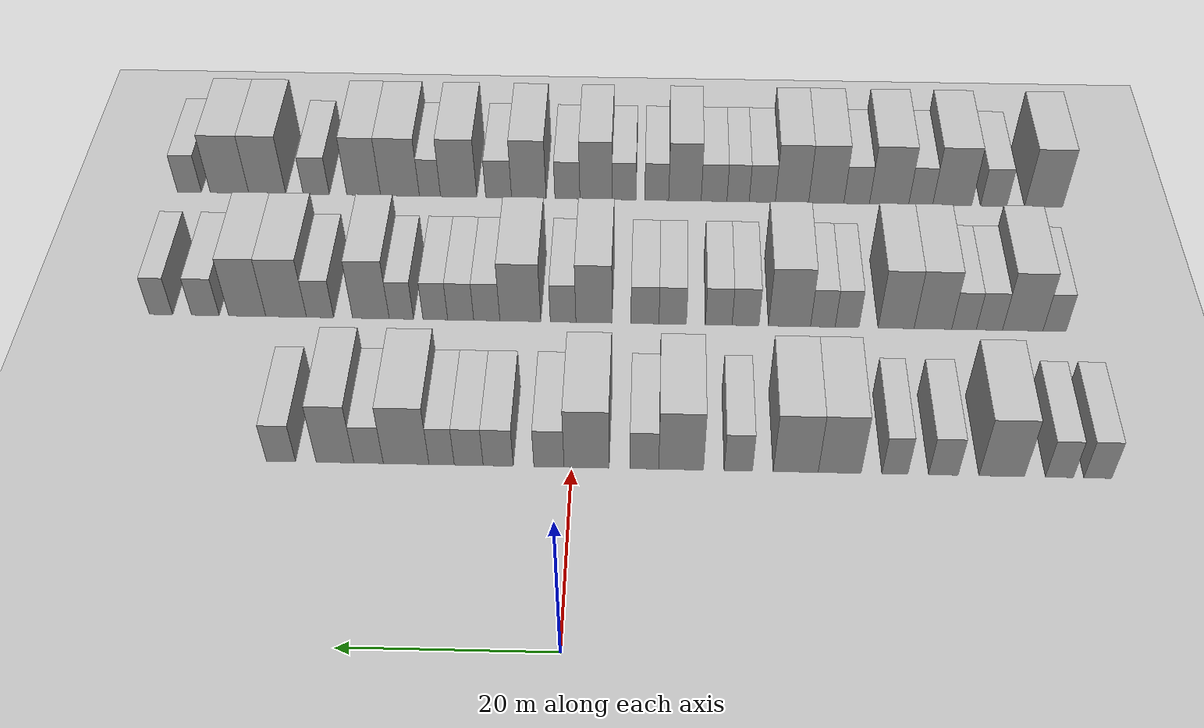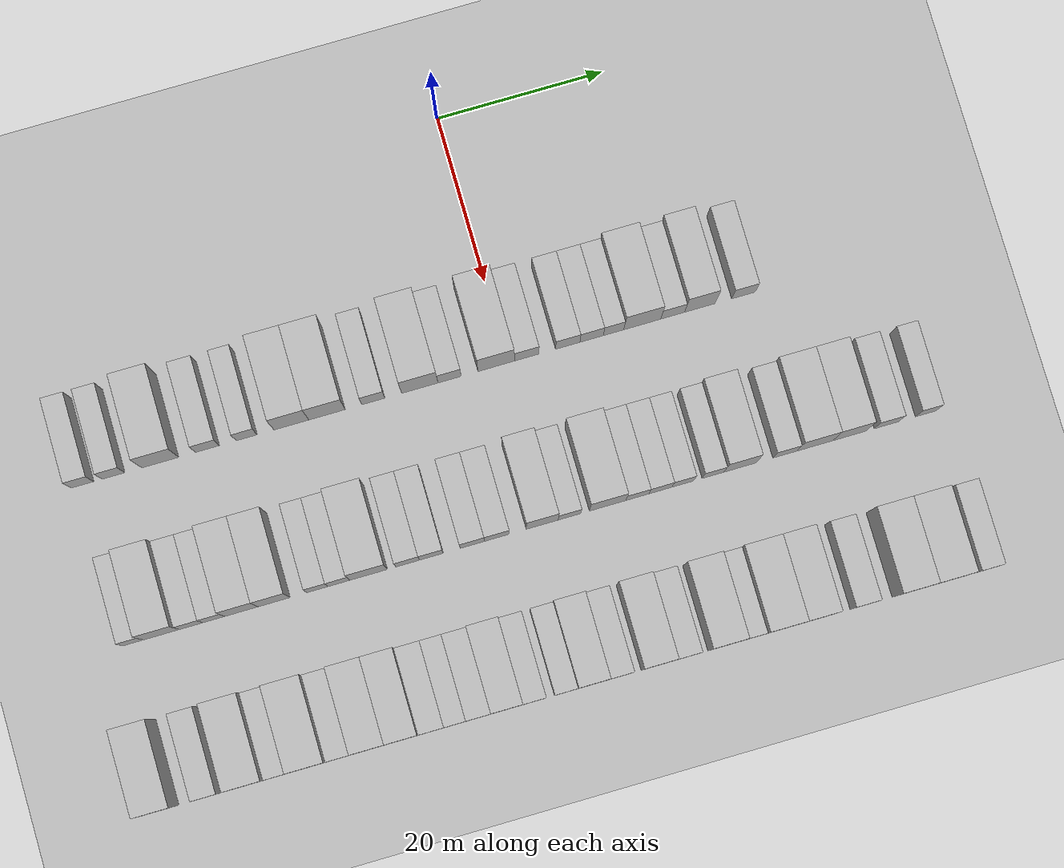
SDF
<sdf version="1.6">
 <world name="default">
  <include><name>ground_plane_1</name><uri>model://HANNAS_ground_plane</uri></include>
  <include>
   <name>ground_plane_2</name>
   <uri>model://HANNAS_ground_plane</uri>
   <pose>100 0 0  0 0 0</pose>
  </include>
  <model name="building_50">
   <static>1</static>
   <pose>25.0000 -50.6639 0 0.000000 0.000000 0.000000</pose>
   <link name="link">
    <pose>0 0 3.00 0 0 0</pose>
    <collision name="collision"><geometry><box><size>10.0000 2.6677 6.0000</size></box></geometry></collision>
    <visual name="visual">
     <cast_shadows>0</cast_shadows>
     <geometry><box><size>10.0000 2.6677 6.0000</size></box></geometry>
     <material>
      <script>
       <uri>model://HANNAS_wall/materials/scripts</uri>
       <uri>model://HANNAS_wall/materials/textures</uri>
       <name>vrc/HANNAS_wall</name>
      </script>
     </material>
    </visual>
   </link>
  </model>
  <model name="building_51">
   <static>1</static>
   <pose>25.0000 -46.9879 0 0.000000 0.000000 0.000000</pose>
   <link name="link">
    <pose>0 0 3.00 0 0 0</pose>
    <collision name="collision"><geometry><box><size>10.0000 2.6842 6.0000</size></box></geometry></collision>
    <visual name="visual">
     <cast_shadows>0</cast_shadows>
     <geometry><box><size>10.0000 2.6842 6.0000</size></box></geometry>
     <material>
      <script>
       <uri>model://HANNAS_wall/materials/scripts</uri>
       <uri>model://HANNAS_wall/materials/textures</uri>
       <name>vrc/HANNAS_wall</name>
      </script>
     </material>
    </visual>
   </link>
  </model>
  <model name="building_52">
   <static>1</static>
   <pose>25.0000 -41.4606 0 0.000000 0.000000 0.000000</pose>
   <link name="link">
    <pose>0 0 4.50 0 0 0</pose>
    <collision name="collision"><geometry><box><size>10.0000 4.3704 9.0000</size></box></geometry></collision>
    <visual name="visual">
     <cast_shadows>0</cast_shadows>
     <geometry><box><size>10.0000 4.3704 9.0000</size></box></geometry>
     <material>
      <script>
       <uri>model://HANNAS_wall/materials/scripts</uri>
       <uri>model://HANNAS_wall/materials/textures</uri>
       <name>vrc/HANNAS_wall</name>
      </script>
     </material>
    </visual>
   </link>
  </model>
  <model name="building_53">
   <static>1</static>
   <pose>25.0000 -35.8592 0 0.000000 0.000000 0.000000</pose>
   <link name="link">
    <pose>0 0 3.00 0 0 0</pose>
    <collision name="collision"><geometry><box><size>10.0000 2.8323 6.0000</size></box></geometry></collision>
    <visual name="visual">
     <cast_shadows>0</cast_shadows>
     <geometry><box><size>10.0000 2.8323 6.0000</size></box></geometry>
     <material>
      <script>
       <uri>model://HANNAS_wall/materials/scripts</uri>
       <uri>model://HANNAS_wall/materials/textures</uri>
       <name>vrc/HANNAS_wall</name>
      </script>
     </material>
    </visual>
   </link>
  </model>
  <model name="building_54">
   <static>1</static>
   <pose>25.0000 -31.1981 0 0.000000 0.000000 0.000000</pose>
   <link name="link">
    <pose>0 0 3.00 0 0 0</pose>
    <collision name="collision"><geometry><box><size>10.0000 2.4901 6.0000</size></box></geometry></collision>
    <visual name="visual">
     <cast_shadows>0</cast_shadows>
     <geometry><box><size>10.0000 2.4901 6.0000</size></box></geometry>
     <material>
      <script>
       <uri>model://HANNAS_wall/materials/scripts</uri>
       <uri>model://HANNAS_wall/materials/textures</uri>
       <name>vrc/HANNAS_wall</name>
      </script>
     </material>
    </visual>
   </link>
  </model>
  <model name="building_55">
   <static>1</static>
   <pose>25.0000 -25.8859 0 0.000000 0.000000 0.000000</pose>
   <link name="link">
    <pose>0 0 4.50 0 0 0</pose>
    <collision name="collision"><geometry><box><size>10.0000 4.1342 9.0000</size></box></geometry></collision>
    <visual name="visual">
     <cast_shadows>0</cast_shadows>
     <geometry><box><size>10.0000 4.1342 9.0000</size></box></geometry>
     <material>
      <script>
       <uri>model://HANNAS_wall/materials/scripts</uri>
       <uri>model://HANNAS_wall/materials/textures</uri>
       <name>vrc/HANNAS_wall</name>
      </script>
     </material>
    </visual>
   </link>
  </model>
  <model name="building_56">
   <static>1</static>
   <pose>25.0000 -21.6514 0 0.000000 0.000000 0.000000</pose>
   <link name="link">
    <pose>0 0 4.50 0 0 0</pose>
    <collision name="collision"><geometry><box><size>10.0000 4.3349 9.0000</size></box></geometry></collision>
    <visual name="visual">
     <cast_shadows>0</cast_shadows>
     <geometry><box><size>10.0000 4.3349 9.0000</size></box></geometry>
     <material>
      <script>
       <uri>model://HANNAS_wall/materials/scripts</uri>
       <uri>model://HANNAS_wall/materials/textures</uri>
       <name>vrc/HANNAS_wall</name>
      </script>
     </material>
    </visual>
   </link>
  </model>
  <model name="building_57">
   <static>1</static>
   <pose>25.0000 -16.1197 0 0.000000 0.000000 0.000000</pose>
   <link name="link">
    <pose>0 0 3.00 0 0 0</pose>
    <collision name="collision"><geometry><box><size>10.0000 2.7285 6.0000</size></box></geometry></collision>
    <visual name="visual">
     <cast_shadows>0</cast_shadows>
     <geometry><box><size>10.0000 2.7285 6.0000</size></box></geometry>
     <material>
      <script>
       <uri>model://HANNAS_wall/materials/scripts</uri>
       <uri>model://HANNAS_wall/materials/textures</uri>
       <name>vrc/HANNAS_wall</name>
      </script>
     </material>
    </visual>
   </link>
  </model>
  <model name="building_58">
   <static>1</static>
   <pose>25.0000 -10.5905 0 0.000000 0.000000 0.000000</pose>
   <link name="link">
    <pose>0 0 4.50 0 0 0</pose>
    <collision name="collision"><geometry><box><size>10.0000 4.3298 9.0000</size></box></geometry></collision>
    <visual name="visual">
     <cast_shadows>0</cast_shadows>
     <geometry><box><size>10.0000 4.3298 9.0000</size></box></geometry>
     <material>
      <script>
       <uri>model://HANNAS_wall/materials/scripts</uri>
       <uri>model://HANNAS_wall/materials/textures</uri>
       <name>vrc/HANNAS_wall</name>
      </script>
     </material>
    </visual>
   </link>
  </model>
  <model name="building_59">
   <static>1</static>
   <pose>25.0000 -7.0376 0 0.000000 0.000000 0.000000</pose>
   <link name="link">
    <pose>0 0 3.00 0 0 0</pose>
    <collision name="collision"><geometry><box><size>10.0000 2.7761 6.0000</size></box></geometry></collision>
    <visual name="visual">
     <cast_shadows>0</cast_shadows>
     <geometry><box><size>10.0000 2.7761 6.0000</size></box></geometry>
     <material>
      <script>
       <uri>model://HANNAS_wall/materials/scripts</uri>
       <uri>model://HANNAS_wall/materials/textures</uri>
       <name>vrc/HANNAS_wall</name>
      </script>
     </material>
    </visual>
   </link>
  </model>
  <model name="building_60">
   <static>1</static>
   <pose>25.0000 -1.4683 0 0.000000 0.000000 0.000000</pose>
   <link name="link">
    <pose>0 0 4.50 0 0 0</pose>
    <collision name="collision"><geometry><box><size>10.0000 4.3626 9.0000</size></box></geometry></collision>
    <visual name="visual">
     <cast_shadows>0</cast_shadows>
     <geometry><box><size>10.0000 4.3626 9.0000</size></box></geometry>
     <material>
      <script>
       <uri>model://HANNAS_wall/materials/scripts</uri>
       <uri>model://HANNAS_wall/materials/textures</uri>
       <name>vrc/HANNAS_wall</name>
      </script>
     </material>
    </visual>
   </link>
  </model>
  <model name="building_61">
   <static>1</static>
   <pose>25.0000 2.1740 0 0.000000 0.000000 0.000000</pose>
   <link name="link">
    <pose>0 0 3.00 0 0 0</pose>
    <collision name="collision"><geometry><box><size>10.0000 2.9219 6.0000</size></box></geometry></collision>
    <visual name="visual">
     <cast_shadows>0</cast_shadows>
     <geometry><box><size>10.0000 2.9219 6.0000</size></box></geometry>
     <material>
      <script>
       <uri>model://HANNAS_wall/materials/scripts</uri>
       <uri>model://HANNAS_wall/materials/textures</uri>
       <name>vrc/HANNAS_wall</name>
      </script>
     </material>
    </visual>
   </link>
  </model>
  <model name="building_62">
   <static>1</static>
   <pose>25.0000 7.0948 0 0.000000 0.000000 0.000000</pose>
   <link name="link">
    <pose>0 0 3.00 0 0 0</pose>
    <collision name="collision"><geometry><box><size>10.0000 2.9197 6.0000</size></box></geometry></collision>
    <visual name="visual">
     <cast_shadows>0</cast_shadows>
     <geometry><box><size>10.0000 2.9197 6.0000</size></box></geometry>
     <material>
      <script>
       <uri>model://HANNAS_wall/materials/scripts</uri>
       <uri>model://HANNAS_wall/materials/textures</uri>
       <name>vrc/HANNAS_wall</name>
      </script>
     </material>
    </visual>
   </link>
  </model>
  <model name="building_63">
   <static>1</static>
   <pose>25.0000 9.9556 0 0.000000 0.000000 0.000000</pose>
   <link name="link">
    <pose>0 0 3.00 0 0 0</pose>
    <collision name="collision"><geometry><box><size>10.0000 2.8018 6.0000</size></box></geometry></collision>
    <visual name="visual">
     <cast_shadows>0</cast_shadows>
     <geometry><box><size>10.0000 2.8018 6.0000</size></box></geometry>
     <material>
      <script>
       <uri>model://HANNAS_wall/materials/scripts</uri>
       <uri>model://HANNAS_wall/materials/textures</uri>
       <name>vrc/HANNAS_wall</name>
      </script>
     </material>
    </visual>
   </link>
  </model>
  <model name="building_64">
   <static>1</static>
   <pose>25.0000 12.5836 0 0.000000 0.000000 0.000000</pose>
   <link name="link">
    <pose>0 0 3.00 0 0 0</pose>
    <collision name="collision"><geometry><box><size>10.0000 2.4542 6.0000</size></box></geometry></collision>
    <visual name="visual">
     <cast_shadows>0</cast_shadows>
     <geometry><box><size>10.0000 2.4542 6.0000</size></box></geometry>
     <material>
      <script>
       <uri>model://HANNAS_wall/materials/scripts</uri>
       <uri>model://HANNAS_wall/materials/textures</uri>
       <name>vrc/HANNAS_wall</name>
      </script>
     </material>
    </visual>
   </link>
  </model>
  <model name="building_65">
   <static>1</static>
   <pose>25.0000 16.0316 0 0.000000 0.000000 0.000000</pose>
   <link name="link">
    <pose>0 0 4.50 0 0 0</pose>
    <collision name="collision"><geometry><box><size>10.0000 4.4417 9.0000</size></box></geometry></collision>
    <visual name="visual">
     <cast_shadows>0</cast_shadows>
     <geometry><box><size>10.0000 4.4417 9.0000</size></box></geometry>
     <material>
      <script>
       <uri>model://HANNAS_wall/materials/scripts</uri>
       <uri>model://HANNAS_wall/materials/textures</uri>
       <name>vrc/HANNAS_wall</name>
      </script>
     </material>
    </visual>
   </link>
  </model>
  <model name="building_66">
   <static>1</static>
   <pose>25.0000 19.6786 0 0.000000 0.000000 0.000000</pose>
   <link name="link">
    <pose>0 0 3.00 0 0 0</pose>
    <collision name="collision"><geometry><box><size>10.0000 2.8523 6.0000</size></box></geometry></collision>
    <visual name="visual">
     <cast_shadows>0</cast_shadows>
     <geometry><box><size>10.0000 2.8523 6.0000</size></box></geometry>
     <material>
      <script>
       <uri>model://HANNAS_wall/materials/scripts</uri>
       <uri>model://HANNAS_wall/materials/textures</uri>
       <name>vrc/HANNAS_wall</name>
      </script>
     </material>
    </visual>
   </link>
  </model>
  <model name="building_67">
   <static>1</static>
   <pose>25.0000 22.9466 0 0.000000 0.000000 0.000000</pose>
   <link name="link">
    <pose>0 0 4.50 0 0 0</pose>
    <collision name="collision"><geometry><box><size>10.0000 3.6837 9.0000</size></box></geometry></collision>
    <visual name="visual">
     <cast_shadows>0</cast_shadows>
     <geometry><box><size>10.0000 3.6837 9.0000</size></box></geometry>
     <material>
      <script>
       <uri>model://HANNAS_wall/materials/scripts</uri>
       <uri>model://HANNAS_wall/materials/textures</uri>
       <name>vrc/HANNAS_wall</name>
      </script>
     </material>
    </visual>
   </link>
  </model>
  <model name="building_68">
   <static>1</static>
   <pose>25.0000 28.2108 0 0.000000 0.000000 0.000000</pose>
   <link name="link">
    <pose>0 0 3.00 0 0 0</pose>
    <collision name="collision"><geometry><box><size>10.0000 2.8446 6.0000</size></box></geometry></collision>
    <visual name="visual">
     <cast_shadows>0</cast_shadows>
     <geometry><box><size>10.0000 2.8446 6.0000</size></box></geometry>
     <material>
      <script>
       <uri>model://HANNAS_wall/materials/scripts</uri>
       <uri>model://HANNAS_wall/materials/textures</uri>
       <name>vrc/HANNAS_wall</name>
      </script>
     </material>
    </visual>
   </link>
  </model>
  <model name="building_165">
   <static>1</static>
   <pose>44.0000 -49.7195 0 0.000000 0.000000 0.000000</pose>
   <link name="link">
    <pose>0 0 3.00 0 0 0</pose>
    <collision name="collision"><geometry><box><size>10.0000 2.4013 6.0000</size></box></geometry></collision>
    <visual name="visual">
     <cast_shadows>0</cast_shadows>
     <geometry><box><size>10.0000 2.4013 6.0000</size></box></geometry>
     <material>
      <script>
       <uri>model://HANNAS_wall/materials/scripts</uri>
       <uri>model://HANNAS_wall/materials/textures</uri>
       <name>vrc/HANNAS_wall</name>
      </script>
     </material>
    </visual>
   </link>
  </model>
  <model name="building_166">
   <static>1</static>
   <pose>44.0000 -46.4094 0 0.000000 0.000000 0.000000</pose>
   <link name="link">
    <pose>0 0 4.50 0 0 0</pose>
    <collision name="collision"><geometry><box><size>10.0000 4.2188 9.0000</size></box></geometry></collision>
    <visual name="visual">
     <cast_shadows>0</cast_shadows>
     <geometry><box><size>10.0000 4.2188 9.0000</size></box></geometry>
     <material>
      <script>
       <uri>model://HANNAS_wall/materials/scripts</uri>
       <uri>model://HANNAS_wall/materials/textures</uri>
       <name>vrc/HANNAS_wall</name>
      </script>
     </material>
    </visual>
   </link>
  </model>
  <model name="building_167">
   <static>1</static>
   <pose>44.0000 -42.9314 0 0.000000 0.000000 0.000000</pose>
   <link name="link">
    <pose>0 0 3.00 0 0 0</pose>
    <collision name="collision"><geometry><box><size>10.0000 2.7372 6.0000</size></box></geometry></collision>
    <visual name="visual">
     <cast_shadows>0</cast_shadows>
     <geometry><box><size>10.0000 2.7372 6.0000</size></box></geometry>
     <material>
      <script>
       <uri>model://HANNAS_wall/materials/scripts</uri>
       <uri>model://HANNAS_wall/materials/textures</uri>
       <name>vrc/HANNAS_wall</name>
      </script>
     </material>
    </visual>
   </link>
  </model>
  <model name="building_168">
   <static>1</static>
   <pose>44.0000 -40.2771 0 0.000000 0.000000 0.000000</pose>
   <link name="link">
    <pose>0 0 3.00 0 0 0</pose>
    <collision name="collision"><geometry><box><size>10.0000 2.5714 6.0000</size></box></geometry></collision>
    <visual name="visual">
     <cast_shadows>0</cast_shadows>
     <geometry><box><size>10.0000 2.5714 6.0000</size></box></geometry>
     <material>
      <script>
       <uri>model://HANNAS_wall/materials/scripts</uri>
       <uri>model://HANNAS_wall/materials/textures</uri>
       <name>vrc/HANNAS_wall</name>
      </script>
     </material>
    </visual>
   </link>
  </model>
  <model name="building_169">
   <static>1</static>
   <pose>44.0000 -37.0267 0 0.000000 0.000000 0.000000</pose>
   <link name="link">
    <pose>0 0 4.50 0 0 0</pose>
    <collision name="collision"><geometry><box><size>10.0000 3.9295 9.0000</size></box></geometry></collision>
    <visual name="visual">
     <cast_shadows>0</cast_shadows>
     <geometry><box><size>10.0000 3.9295 9.0000</size></box></geometry>
     <material>
      <script>
       <uri>model://HANNAS_wall/materials/scripts</uri>
       <uri>model://HANNAS_wall/materials/textures</uri>
       <name>vrc/HANNAS_wall</name>
      </script>
     </material>
    </visual>
   </link>
  </model>
  <model name="building_170">
   <static>1</static>
   <pose>44.0000 -33.1821 0 0.000000 0.000000 0.000000</pose>
   <link name="link">
    <pose>0 0 4.50 0 0 0</pose>
    <collision name="collision"><geometry><box><size>10.0000 3.7597 9.0000</size></box></geometry></collision>
    <visual name="visual">
     <cast_shadows>0</cast_shadows>
     <geometry><box><size>10.0000 3.7597 9.0000</size></box></geometry>
     <material>
      <script>
       <uri>model://HANNAS_wall/materials/scripts</uri>
       <uri>model://HANNAS_wall/materials/textures</uri>
       <name>vrc/HANNAS_wall</name>
      </script>
     </material>
    </visual>
   </link>
  </model>
  <model name="building_171">
   <static>1</static>
   <pose>44.0000 -28.0543 0 0.000000 0.000000 0.000000</pose>
   <link name="link">
    <pose>0 0 3.00 0 0 0</pose>
    <collision name="collision"><geometry><box><size>10.0000 2.4958 6.0000</size></box></geometry></collision>
    <visual name="visual">
     <cast_shadows>0</cast_shadows>
     <geometry><box><size>10.0000 2.4958 6.0000</size></box></geometry>
     <material>
      <script>
       <uri>model://HANNAS_wall/materials/scripts</uri>
       <uri>model://HANNAS_wall/materials/textures</uri>
       <name>vrc/HANNAS_wall</name>
      </script>
     </material>
    </visual>
   </link>
  </model>
  <model name="building_172">
   <static>1</static>
   <pose>44.0000 -25.5163 0 0.000000 0.000000 0.000000</pose>
   <link name="link">
    <pose>0 0 3.00 0 0 0</pose>
    <collision name="collision"><geometry><box><size>10.0000 2.5802 6.0000</size></box></geometry></collision>
    <visual name="visual">
     <cast_shadows>0</cast_shadows>
     <geometry><box><size>10.0000 2.5802 6.0000</size></box></geometry>
     <material>
      <script>
       <uri>model://HANNAS_wall/materials/scripts</uri>
       <uri>model://HANNAS_wall/materials/textures</uri>
       <name>vrc/HANNAS_wall</name>
      </script>
     </material>
    </visual>
   </link>
  </model>
  <model name="building_173">
   <static>1</static>
   <pose>44.0000 -22.0205 0 0.000000 0.000000 0.000000</pose>
   <link name="link">
    <pose>0 0 4.50 0 0 0</pose>
    <collision name="collision"><geometry><box><size>10.0000 4.4114 9.0000</size></box></geometry></collision>
    <visual name="visual">
     <cast_shadows>0</cast_shadows>
     <geometry><box><size>10.0000 4.4114 9.0000</size></box></geometry>
     <material>
      <script>
       <uri>model://HANNAS_wall/materials/scripts</uri>
       <uri>model://HANNAS_wall/materials/textures</uri>
       <name>vrc/HANNAS_wall</name>
      </script>
     </material>
    </visual>
   </link>
  </model>
  <model name="building_174">
   <static>1</static>
   <pose>44.0000 -17.4046 0 0.000000 0.000000 0.000000</pose>
   <link name="link">
    <pose>0 0 3.00 0 0 0</pose>
    <collision name="collision"><geometry><box><size>10.0000 2.8203 6.0000</size></box></geometry></collision>
    <visual name="visual">
     <cast_shadows>0</cast_shadows>
     <geometry><box><size>10.0000 2.8203 6.0000</size></box></geometry>
     <material>
      <script>
       <uri>model://HANNAS_wall/materials/scripts</uri>
       <uri>model://HANNAS_wall/materials/textures</uri>
       <name>vrc/HANNAS_wall</name>
      </script>
     </material>
    </visual>
   </link>
  </model>
  <model name="building_175">
   <static>1</static>
   <pose>44.0000 -14.5951 0 0.000000 0.000000 0.000000</pose>
   <link name="link">
    <pose>0 0 3.00 0 0 0</pose>
    <collision name="collision"><geometry><box><size>10.0000 2.7988 6.0000</size></box></geometry></collision>
    <visual name="visual">
     <cast_shadows>0</cast_shadows>
     <geometry><box><size>10.0000 2.7988 6.0000</size></box></geometry>
     <material>
      <script>
       <uri>model://HANNAS_wall/materials/scripts</uri>
       <uri>model://HANNAS_wall/materials/textures</uri>
       <name>vrc/HANNAS_wall</name>
      </script>
     </material>
    </visual>
   </link>
  </model>
  <model name="building_176">
   <static>1</static>
   <pose>44.0000 -9.7527 0 0.000000 0.000000 0.000000</pose>
   <link name="link">
    <pose>0 0 3.00 0 0 0</pose>
    <collision name="collision"><geometry><box><size>10.0000 2.8860 6.0000</size></box></geometry></collision>
    <visual name="visual">
     <cast_shadows>0</cast_shadows>
     <geometry><box><size>10.0000 2.8860 6.0000</size></box></geometry>
     <material>
      <script>
       <uri>model://HANNAS_wall/materials/scripts</uri>
       <uri>model://HANNAS_wall/materials/textures</uri>
       <name>vrc/HANNAS_wall</name>
      </script>
     </material>
    </visual>
   </link>
  </model>
  <model name="building_177">
   <static>1</static>
   <pose>44.0000 -6.8446 0 0.000000 0.000000 0.000000</pose>
   <link name="link">
    <pose>0 0 3.00 0 0 0</pose>
    <collision name="collision"><geometry><box><size>10.0000 2.9302 6.0000</size></box></geometry></collision>
    <visual name="visual">
     <cast_shadows>0</cast_shadows>
     <geometry><box><size>10.0000 2.9302 6.0000</size></box></geometry>
     <material>
      <script>
       <uri>model://HANNAS_wall/materials/scripts</uri>
       <uri>model://HANNAS_wall/materials/textures</uri>
       <name>vrc/HANNAS_wall</name>
      </script>
     </material>
    </visual>
   </link>
  </model>
  <model name="building_178">
   <static>1</static>
   <pose>44.0000 -1.4831 0 0.000000 0.000000 0.000000</pose>
   <link name="link">
    <pose>0 0 4.50 0 0 0</pose>
    <collision name="collision"><geometry><box><size>10.0000 3.7928 9.0000</size></box></geometry></collision>
    <visual name="visual">
     <cast_shadows>0</cast_shadows>
     <geometry><box><size>10.0000 3.7928 9.0000</size></box></geometry>
     <material>
      <script>
       <uri>model://HANNAS_wall/materials/scripts</uri>
       <uri>model://HANNAS_wall/materials/textures</uri>
       <name>vrc/HANNAS_wall</name>
      </script>
     </material>
    </visual>
   </link>
  </model>
  <model name="building_179">
   <static>1</static>
   <pose>44.0000 1.7631 0 0.000000 0.000000 0.000000</pose>
   <link name="link">
    <pose>0 0 3.00 0 0 0</pose>
    <collision name="collision"><geometry><box><size>10.0000 2.6995 6.0000</size></box></geometry></collision>
    <visual name="visual">
     <cast_shadows>0</cast_shadows>
     <geometry><box><size>10.0000 2.6995 6.0000</size></box></geometry>
     <material>
      <script>
       <uri>model://HANNAS_wall/materials/scripts</uri>
       <uri>model://HANNAS_wall/materials/textures</uri>
       <name>vrc/HANNAS_wall</name>
      </script>
     </material>
    </visual>
   </link>
  </model>
  <model name="building_180">
   <static>1</static>
   <pose>44.0000 6.2702 0 0.000000 0.000000 0.000000</pose>
   <link name="link">
    <pose>0 0 4.50 0 0 0</pose>
    <collision name="collision"><geometry><box><size>10.0000 4.3147 9.0000</size></box></geometry></collision>
    <visual name="visual">
     <cast_shadows>0</cast_shadows>
     <geometry><box><size>10.0000 4.3147 9.0000</size></box></geometry>
     <material>
      <script>
       <uri>model://HANNAS_wall/materials/scripts</uri>
       <uri>model://HANNAS_wall/materials/textures</uri>
       <name>vrc/HANNAS_wall</name>
      </script>
     </material>
    </visual>
   </link>
  </model>
  <model name="building_181">
   <static>1</static>
   <pose>44.0000 9.8084 0 0.000000 0.000000 0.000000</pose>
   <link name="link">
    <pose>0 0 3.00 0 0 0</pose>
    <collision name="collision"><geometry><box><size>10.0000 2.7618 6.0000</size></box></geometry></collision>
    <visual name="visual">
     <cast_shadows>0</cast_shadows>
     <geometry><box><size>10.0000 2.7618 6.0000</size></box></geometry>
     <material>
      <script>
       <uri>model://HANNAS_wall/materials/scripts</uri>
       <uri>model://HANNAS_wall/materials/textures</uri>
       <name>vrc/HANNAS_wall</name>
      </script>
     </material>
    </visual>
   </link>
  </model>
  <model name="building_182">
   <static>1</static>
   <pose>44.0000 12.5630 0 0.000000 0.000000 0.000000</pose>
   <link name="link">
    <pose>0 0 3.00 0 0 0</pose>
    <collision name="collision"><geometry><box><size>10.0000 2.7474 6.0000</size></box></geometry></collision>
    <visual name="visual">
     <cast_shadows>0</cast_shadows>
     <geometry><box><size>10.0000 2.7474 6.0000</size></box></geometry>
     <material>
      <script>
       <uri>model://HANNAS_wall/materials/scripts</uri>
       <uri>model://HANNAS_wall/materials/textures</uri>
       <name>vrc/HANNAS_wall</name>
      </script>
     </material>
    </visual>
   </link>
  </model>
  <model name="building_183">
   <static>1</static>
   <pose>44.0000 15.2393 0 0.000000 0.000000 0.000000</pose>
   <link name="link">
    <pose>0 0 3.00 0 0 0</pose>
    <collision name="collision"><geometry><box><size>10.0000 2.6052 6.0000</size></box></geometry></collision>
    <visual name="visual">
     <cast_shadows>0</cast_shadows>
     <geometry><box><size>10.0000 2.6052 6.0000</size></box></geometry>
     <material>
      <script>
       <uri>model://HANNAS_wall/materials/scripts</uri>
       <uri>model://HANNAS_wall/materials/textures</uri>
       <name>vrc/HANNAS_wall</name>
      </script>
     </material>
    </visual>
   </link>
  </model>
  <model name="building_184">
   <static>1</static>
   <pose>44.0000 18.8313 0 0.000000 0.000000 0.000000</pose>
   <link name="link">
    <pose>0 0 3.00 0 0 0</pose>
    <collision name="collision"><geometry><box><size>10.0000 2.5788 6.0000</size></box></geometry></collision>
    <visual name="visual">
     <cast_shadows>0</cast_shadows>
     <geometry><box><size>10.0000 2.5788 6.0000</size></box></geometry>
     <material>
      <script>
       <uri>model://HANNAS_wall/materials/scripts</uri>
       <uri>model://HANNAS_wall/materials/textures</uri>
       <name>vrc/HANNAS_wall</name>
      </script>
     </material>
    </visual>
   </link>
  </model>
  <model name="building_185">
   <static>1</static>
   <pose>44.0000 22.0573 0 0.000000 0.000000 0.000000</pose>
   <link name="link">
    <pose>0 0 4.50 0 0 0</pose>
    <collision name="collision"><geometry><box><size>10.0000 3.8732 9.0000</size></box></geometry></collision>
    <visual name="visual">
     <cast_shadows>0</cast_shadows>
     <geometry><box><size>10.0000 3.8732 9.0000</size></box></geometry>
     <material>
      <script>
       <uri>model://HANNAS_wall/materials/scripts</uri>
       <uri>model://HANNAS_wall/materials/textures</uri>
       <name>vrc/HANNAS_wall</name>
      </script>
     </material>
    </visual>
   </link>
  </model>
  <model name="building_186">
   <static>1</static>
   <pose>44.0000 27.4342 0 0.000000 0.000000 0.000000</pose>
   <link name="link">
    <pose>0 0 3.00 0 0 0</pose>
    <collision name="collision"><geometry><box><size>10.0000 2.8807 6.0000</size></box></geometry></collision>
    <visual name="visual">
     <cast_shadows>0</cast_shadows>
     <geometry><box><size>10.0000 2.8807 6.0000</size></box></geometry>
     <material>
      <script>
       <uri>model://HANNAS_wall/materials/scripts</uri>
       <uri>model://HANNAS_wall/materials/textures</uri>
       <name>vrc/HANNAS_wall</name>
      </script>
     </material>
    </visual>
   </link>
  </model>
  <model name="building_187">
   <static>1</static>
   <pose>44.0000 31.0306 0 0.000000 0.000000 0.000000</pose>
   <link name="link">
    <pose>0 0 4.50 0 0 0</pose>
    <collision name="collision"><geometry><box><size>10.0000 4.3120 9.0000</size></box></geometry></collision>
    <visual name="visual">
     <cast_shadows>0</cast_shadows>
     <geometry><box><size>10.0000 4.3120 9.0000</size></box></geometry>
     <material>
      <script>
       <uri>model://HANNAS_wall/materials/scripts</uri>
       <uri>model://HANNAS_wall/materials/textures</uri>
       <name>vrc/HANNAS_wall</name>
      </script>
     </material>
    </visual>
   </link>
  </model>
  <model name="building_188">
   <static>1</static>
   <pose>44.0000 35.1589 0 0.000000 0.000000 0.000000</pose>
   <link name="link">
    <pose>0 0 4.50 0 0 0</pose>
    <collision name="collision"><geometry><box><size>10.0000 3.9446 9.0000</size></box></geometry></collision>
    <visual name="visual">
     <cast_shadows>0</cast_shadows>
     <geometry><box><size>10.0000 3.9446 9.0000</size></box></geometry>
     <material>
      <script>
       <uri>model://HANNAS_wall/materials/scripts</uri>
       <uri>model://HANNAS_wall/materials/textures</uri>
       <name>vrc/HANNAS_wall</name>
      </script>
     </material>
    </visual>
   </link>
  </model>
  <model name="building_189">
   <static>1</static>
   <pose>44.0000 39.6025 0 0.000000 0.000000 0.000000</pose>
   <link name="link">
    <pose>0 0 3.00 0 0 0</pose>
    <collision name="collision"><geometry><box><size>10.0000 2.9427 6.0000</size></box></geometry></collision>
    <visual name="visual">
     <cast_shadows>0</cast_shadows>
     <geometry><box><size>10.0000 2.9427 6.0000</size></box></geometry>
     <material>
      <script>
       <uri>model://HANNAS_wall/materials/scripts</uri>
       <uri>model://HANNAS_wall/materials/textures</uri>
       <name>vrc/HANNAS_wall</name>
      </script>
     </material>
    </visual>
   </link>
  </model>
  <model name="building_190">
   <static>1</static>
   <pose>44.0000 44.3143 0 0.000000 0.000000 0.000000</pose>
   <link name="link">
    <pose>0 0 3.00 0 0 0</pose>
    <collision name="collision"><geometry><box><size>10.0000 2.4810 6.0000</size></box></geometry></collision>
    <visual name="visual">
     <cast_shadows>0</cast_shadows>
     <geometry><box><size>10.0000 2.4810 6.0000</size></box></geometry>
     <material>
      <script>
       <uri>model://HANNAS_wall/materials/scripts</uri>
       <uri>model://HANNAS_wall/materials/textures</uri>
       <name>vrc/HANNAS_wall</name>
      </script>
     </material>
    </visual>
   </link>
  </model>
  <model name="building_283">
   <static>1</static>
   <pose>63.0000 -51.6942 0 0.000000 0.000000 0.000000</pose>
   <link name="link">
    <pose>0 0 4.50 0 0 0</pose>
    <collision name="collision"><geometry><box><size>10.0000 4.2776 9.0000</size></box></geometry></collision>
    <visual name="visual">
     <cast_shadows>0</cast_shadows>
     <geometry><box><size>10.0000 4.2776 9.0000</size></box></geometry>
     <material>
      <script>
       <uri>model://HANNAS_wall/materials/scripts</uri>
       <uri>model://HANNAS_wall/materials/textures</uri>
       <name>vrc/HANNAS_wall</name>
      </script>
     </material>
    </visual>
   </link>
  </model>
  <model name="building_284">
   <static>1</static>
   <pose>63.0000 -46.0727 0 0.000000 0.000000 0.000000</pose>
   <link name="link">
    <pose>0 0 3.00 0 0 0</pose>
    <collision name="collision"><geometry><box><size>10.0000 2.9654 6.0000</size></box></geometry></collision>
    <visual name="visual">
     <cast_shadows>0</cast_shadows>
     <geometry><box><size>10.0000 2.9654 6.0000</size></box></geometry>
     <material>
      <script>
       <uri>model://HANNAS_wall/materials/scripts</uri>
       <uri>model://HANNAS_wall/materials/textures</uri>
       <name>vrc/HANNAS_wall</name>
      </script>
     </material>
    </visual>
   </link>
  </model>
  <model name="building_285">
   <static>1</static>
   <pose>63.0000 -41.3872 0 0.000000 0.000000 0.000000</pose>
   <link name="link">
    <pose>0 0 4.50 0 0 0</pose>
    <collision name="collision"><geometry><box><size>10.0000 4.4054 9.0000</size></box></geometry></collision>
    <visual name="visual">
     <cast_shadows>0</cast_shadows>
     <geometry><box><size>10.0000 4.4054 9.0000</size></box></geometry>
     <material>
      <script>
       <uri>model://HANNAS_wall/materials/scripts</uri>
       <uri>model://HANNAS_wall/materials/textures</uri>
       <name>vrc/HANNAS_wall</name>
      </script>
     </material>
    </visual>
   </link>
  </model>
  <model name="building_286">
   <static>1</static>
   <pose>63.0000 -37.8307 0 0.000000 0.000000 0.000000</pose>
   <link name="link">
    <pose>0 0 3.00 0 0 0</pose>
    <collision name="collision"><geometry><box><size>10.0000 2.7076 6.0000</size></box></geometry></collision>
    <visual name="visual">
     <cast_shadows>0</cast_shadows>
     <geometry><box><size>10.0000 2.7076 6.0000</size></box></geometry>
     <material>
      <script>
       <uri>model://HANNAS_wall/materials/scripts</uri>
       <uri>model://HANNAS_wall/materials/textures</uri>
       <name>vrc/HANNAS_wall</name>
      </script>
     </material>
    </visual>
   </link>
  </model>
  <model name="building_287">
   <static>1</static>
   <pose>63.0000 -34.2591 0 0.000000 0.000000 0.000000</pose>
   <link name="link">
    <pose>0 0 4.50 0 0 0</pose>
    <collision name="collision"><geometry><box><size>10.0000 4.4357 9.0000</size></box></geometry></collision>
    <visual name="visual">
     <cast_shadows>0</cast_shadows>
     <geometry><box><size>10.0000 4.4357 9.0000</size></box></geometry>
     <material>
      <script>
       <uri>model://HANNAS_wall/materials/scripts</uri>
       <uri>model://HANNAS_wall/materials/textures</uri>
       <name>vrc/HANNAS_wall</name>
      </script>
     </material>
    </visual>
   </link>
  </model>
  <model name="building_288">
   <static>1</static>
   <pose>63.0000 -30.5920 0 0.000000 0.000000 0.000000</pose>
   <link name="link">
    <pose>0 0 3.00 0 0 0</pose>
    <collision name="collision"><geometry><box><size>10.0000 2.8984 6.0000</size></box></geometry></collision>
    <visual name="visual">
     <cast_shadows>0</cast_shadows>
     <geometry><box><size>10.0000 2.8984 6.0000</size></box></geometry>
     <material>
      <script>
       <uri>model://HANNAS_wall/materials/scripts</uri>
       <uri>model://HANNAS_wall/materials/textures</uri>
       <name>vrc/HANNAS_wall</name>
      </script>
     </material>
    </visual>
   </link>
  </model>
  <model name="building_289">
   <static>1</static>
   <pose>63.0000 -27.1497 0 0.000000 0.000000 0.000000</pose>
   <link name="link">
    <pose>0 0 4.50 0 0 0</pose>
    <collision name="collision"><geometry><box><size>10.0000 3.9861 9.0000</size></box></geometry></collision>
    <visual name="visual">
     <cast_shadows>0</cast_shadows>
     <geometry><box><size>10.0000 3.9861 9.0000</size></box></geometry>
     <material>
      <script>
       <uri>model://HANNAS_wall/materials/scripts</uri>
       <uri>model://HANNAS_wall/materials/textures</uri>
       <name>vrc/HANNAS_wall</name>
      </script>
     </material>
    </visual>
   </link>
  </model>
  <model name="building_290">
   <static>1</static>
   <pose>63.0000 -23.2684 0 0.000000 0.000000 0.000000</pose>
   <link name="link">
    <pose>0 0 4.50 0 0 0</pose>
    <collision name="collision"><geometry><box><size>10.0000 3.7766 9.0000</size></box></geometry></collision>
    <visual name="visual">
     <cast_shadows>0</cast_shadows>
     <geometry><box><size>10.0000 3.7766 9.0000</size></box></geometry>
     <material>
      <script>
       <uri>model://HANNAS_wall/materials/scripts</uri>
       <uri>model://HANNAS_wall/materials/textures</uri>
       <name>vrc/HANNAS_wall</name>
      </script>
     </material>
    </visual>
   </link>
  </model>
  <model name="building_291">
   <static>1</static>
   <pose>63.0000 -19.9007 0 0.000000 0.000000 0.000000</pose>
   <link name="link">
    <pose>0 0 3.00 0 0 0</pose>
    <collision name="collision"><geometry><box><size>10.0000 2.9586 6.0000</size></box></geometry></collision>
    <visual name="visual">
     <cast_shadows>0</cast_shadows>
     <geometry><box><size>10.0000 2.9586 6.0000</size></box></geometry>
     <material>
      <script>
       <uri>model://HANNAS_wall/materials/scripts</uri>
       <uri>model://HANNAS_wall/materials/textures</uri>
       <name>vrc/HANNAS_wall</name>
      </script>
     </material>
    </visual>
   </link>
  </model>
  <model name="building_292">
   <static>1</static>
   <pose>63.0000 -17.1559 0 0.000000 0.000000 0.000000</pose>
   <link name="link">
    <pose>0 0 3.00 0 0 0</pose>
    <collision name="collision"><geometry><box><size>10.0000 2.5309 6.0000</size></box></geometry></collision>
    <visual name="visual">
     <cast_shadows>0</cast_shadows>
     <geometry><box><size>10.0000 2.5309 6.0000</size></box></geometry>
     <material>
      <script>
       <uri>model://HANNAS_wall/materials/scripts</uri>
       <uri>model://HANNAS_wall/materials/textures</uri>
       <name>vrc/HANNAS_wall</name>
      </script>
     </material>
    </visual>
   </link>
  </model>
  <model name="building_293">
   <static>1</static>
   <pose>63.0000 -14.4293 0 0.000000 0.000000 0.000000</pose>
   <link name="link">
    <pose>0 0 3.00 0 0 0</pose>
    <collision name="collision"><geometry><box><size>10.0000 2.9225 6.0000</size></box></geometry></collision>
    <visual name="visual">
     <cast_shadows>0</cast_shadows>
     <geometry><box><size>10.0000 2.9225 6.0000</size></box></geometry>
     <material>
      <script>
       <uri>model://HANNAS_wall/materials/scripts</uri>
       <uri>model://HANNAS_wall/materials/textures</uri>
       <name>vrc/HANNAS_wall</name>
      </script>
     </material>
    </visual>
   </link>
  </model>
  <model name="building_294">
   <static>1</static>
   <pose>63.0000 -11.1226 0 0.000000 0.000000 0.000000</pose>
   <link name="link">
    <pose>0 0 4.50 0 0 0</pose>
    <collision name="collision"><geometry><box><size>10.0000 3.6908 9.0000</size></box></geometry></collision>
    <visual name="visual">
     <cast_shadows>0</cast_shadows>
     <geometry><box><size>10.0000 3.6908 9.0000</size></box></geometry>
     <material>
      <script>
       <uri>model://HANNAS_wall/materials/scripts</uri>
       <uri>model://HANNAS_wall/materials/textures</uri>
       <name>vrc/HANNAS_wall</name>
      </script>
     </material>
    </visual>
   </link>
  </model>
  <model name="building_295">
   <static>1</static>
   <pose>63.0000 -7.9226 0 0.000000 0.000000 0.000000</pose>
   <link name="link">
    <pose>0 0 3.00 0 0 0</pose>
    <collision name="collision"><geometry><box><size>10.0000 2.7093 6.0000</size></box></geometry></collision>
    <visual name="visual">
     <cast_shadows>0</cast_shadows>
     <geometry><box><size>10.0000 2.7093 6.0000</size></box></geometry>
     <material>
      <script>
       <uri>model://HANNAS_wall/materials/scripts</uri>
       <uri>model://HANNAS_wall/materials/textures</uri>
       <name>vrc/HANNAS_wall</name>
      </script>
     </material>
    </visual>
   </link>
  </model>
  <model name="building_296">
   <static>1</static>
   <pose>63.0000 -4.2208 0 0.000000 0.000000 0.000000</pose>
   <link name="link">
    <pose>0 0 3.00 0 0 0</pose>
    <collision name="collision"><geometry><box><size>10.0000 2.6943 6.0000</size></box></geometry></collision>
    <visual name="visual">
     <cast_shadows>0</cast_shadows>
     <geometry><box><size>10.0000 2.6943 6.0000</size></box></geometry>
     <material>
      <script>
       <uri>model://HANNAS_wall/materials/scripts</uri>
       <uri>model://HANNAS_wall/materials/textures</uri>
       <name>vrc/HANNAS_wall</name>
      </script>
     </material>
    </visual>
   </link>
  </model>
  <model name="building_297">
   <static>1</static>
   <pose>63.0000 -1.0320 0 0.000000 0.000000 0.000000</pose>
   <link name="link">
    <pose>0 0 4.50 0 0 0</pose>
    <collision name="collision"><geometry><box><size>10.0000 3.6835 9.0000</size></box></geometry></collision>
    <visual name="visual">
     <cast_shadows>0</cast_shadows>
     <geometry><box><size>10.0000 3.6835 9.0000</size></box></geometry>
     <material>
      <script>
       <uri>model://HANNAS_wall/materials/scripts</uri>
       <uri>model://HANNAS_wall/materials/textures</uri>
       <name>vrc/HANNAS_wall</name>
      </script>
     </material>
    </visual>
   </link>
  </model>
  <model name="building_298">
   <static>1</static>
   <pose>63.0000 2.2329 0 0.000000 0.000000 0.000000</pose>
   <link name="link">
    <pose>0 0 3.00 0 0 0</pose>
    <collision name="collision"><geometry><box><size>10.0000 2.8462 6.0000</size></box></geometry></collision>
    <visual name="visual">
     <cast_shadows>0</cast_shadows>
     <geometry><box><size>10.0000 2.8462 6.0000</size></box></geometry>
     <material>
      <script>
       <uri>model://HANNAS_wall/materials/scripts</uri>
       <uri>model://HANNAS_wall/materials/textures</uri>
       <name>vrc/HANNAS_wall</name>
      </script>
     </material>
    </visual>
   </link>
  </model>
  <model name="building_299">
   <static>1</static>
   <pose>63.0000 6.6239 0 0.000000 0.000000 0.000000</pose>
   <link name="link">
    <pose>0 0 4.50 0 0 0</pose>
    <collision name="collision"><geometry><box><size>10.0000 3.9358 9.0000</size></box></geometry></collision>
    <visual name="visual">
     <cast_shadows>0</cast_shadows>
     <geometry><box><size>10.0000 3.9358 9.0000</size></box></geometry>
     <material>
      <script>
       <uri>model://HANNAS_wall/materials/scripts</uri>
       <uri>model://HANNAS_wall/materials/textures</uri>
       <name>vrc/HANNAS_wall</name>
      </script>
     </material>
    </visual>
   </link>
  </model>
  <model name="building_300">
   <static>1</static>
   <pose>63.0000 10.0700 0 0.000000 0.000000 0.000000</pose>
   <link name="link">
    <pose>0 0 3.00 0 0 0</pose>
    <collision name="collision"><geometry><box><size>10.0000 2.9564 6.0000</size></box></geometry></collision>
    <visual name="visual">
     <cast_shadows>0</cast_shadows>
     <geometry><box><size>10.0000 2.9564 6.0000</size></box></geometry>
     <material>
      <script>
       <uri>model://HANNAS_wall/materials/scripts</uri>
       <uri>model://HANNAS_wall/materials/textures</uri>
       <name>vrc/HANNAS_wall</name>
      </script>
     </material>
    </visual>
   </link>
  </model>
  <model name="building_301">
   <static>1</static>
   <pose>63.0000 14.6224 0 0.000000 0.000000 0.000000</pose>
   <link name="link">
    <pose>0 0 4.50 0 0 0</pose>
    <collision name="collision"><geometry><box><size>10.0000 4.1484 9.0000</size></box></geometry></collision>
    <visual name="visual">
     <cast_shadows>0</cast_shadows>
     <geometry><box><size>10.0000 4.1484 9.0000</size></box></geometry>
     <material>
      <script>
       <uri>model://HANNAS_wall/materials/scripts</uri>
       <uri>model://HANNAS_wall/materials/textures</uri>
       <name>vrc/HANNAS_wall</name>
      </script>
     </material>
    </visual>
   </link>
  </model>
  <model name="building_302">
   <static>1</static>
   <pose>63.0000 17.9023 0 0.000000 0.000000 0.000000</pose>
   <link name="link">
    <pose>0 0 3.00 0 0 0</pose>
    <collision name="collision"><geometry><box><size>10.0000 2.4115 6.0000</size></box></geometry></collision>
    <visual name="visual">
     <cast_shadows>0</cast_shadows>
     <geometry><box><size>10.0000 2.4115 6.0000</size></box></geometry>
     <material>
      <script>
       <uri>model://HANNAS_wall/materials/scripts</uri>
       <uri>model://HANNAS_wall/materials/textures</uri>
       <name>vrc/HANNAS_wall</name>
      </script>
     </material>
    </visual>
   </link>
  </model>
  <model name="building_303">
   <static>1</static>
   <pose>63.0000 21.3271 0 0.000000 0.000000 0.000000</pose>
   <link name="link">
    <pose>0 0 4.50 0 0 0</pose>
    <collision name="collision"><geometry><box><size>10.0000 4.4379 9.0000</size></box></geometry></collision>
    <visual name="visual">
     <cast_shadows>0</cast_shadows>
     <geometry><box><size>10.0000 4.4379 9.0000</size></box></geometry>
     <material>
      <script>
       <uri>model://HANNAS_wall/materials/scripts</uri>
       <uri>model://HANNAS_wall/materials/textures</uri>
       <name>vrc/HANNAS_wall</name>
      </script>
     </material>
    </visual>
   </link>
  </model>
  <model name="building_304">
   <static>1</static>
   <pose>63.0000 25.4777 0 0.000000 0.000000 0.000000</pose>
   <link name="link">
    <pose>0 0 4.50 0 0 0</pose>
    <collision name="collision"><geometry><box><size>10.0000 3.8634 9.0000</size></box></geometry></collision>
    <visual name="visual">
     <cast_shadows>0</cast_shadows>
     <geometry><box><size>10.0000 3.8634 9.0000</size></box></geometry>
     <material>
      <script>
       <uri>model://HANNAS_wall/materials/scripts</uri>
       <uri>model://HANNAS_wall/materials/textures</uri>
       <name>vrc/HANNAS_wall</name>
      </script>
     </material>
    </visual>
   </link>
  </model>
  <model name="building_305">
   <static>1</static>
   <pose>63.0000 30.9073 0 0.000000 0.000000 0.000000</pose>
   <link name="link">
    <pose>0 0 3.00 0 0 0</pose>
    <collision name="collision"><geometry><box><size>10.0000 2.9957 6.0000</size></box></geometry></collision>
    <visual name="visual">
     <cast_shadows>0</cast_shadows>
     <geometry><box><size>10.0000 2.9957 6.0000</size></box></geometry>
     <material>
      <script>
       <uri>model://HANNAS_wall/materials/scripts</uri>
       <uri>model://HANNAS_wall/materials/textures</uri>
       <name>vrc/HANNAS_wall</name>
      </script>
     </material>
    </visual>
   </link>
  </model>
  <model name="building_306">
   <static>1</static>
   <pose>63.0000 36.5289 0 0.000000 0.000000 0.000000</pose>
   <link name="link">
    <pose>0 0 4.50 0 0 0</pose>
    <collision name="collision"><geometry><box><size>10.0000 4.2476 9.0000</size></box></geometry></collision>
    <visual name="visual">
     <cast_shadows>0</cast_shadows>
     <geometry><box><size>10.0000 4.2476 9.0000</size></box></geometry>
     <material>
      <script>
       <uri>model://HANNAS_wall/materials/scripts</uri>
       <uri>model://HANNAS_wall/materials/textures</uri>
       <name>vrc/HANNAS_wall</name>
      </script>
     </material>
    </visual>
   </link>
  </model>
  <model name="building_307">
   <static>1</static>
   <pose>63.0000 40.8625 0 0.000000 0.000000 0.000000</pose>
   <link name="link">
    <pose>0 0 4.50 0 0 0</pose>
    <collision name="collision"><geometry><box><size>10.0000 4.4196 9.0000</size></box></geometry></collision>
    <visual name="visual">
     <cast_shadows>0</cast_shadows>
     <geometry><box><size>10.0000 4.4196 9.0000</size></box></geometry>
     <material>
      <script>
       <uri>model://HANNAS_wall/materials/scripts</uri>
       <uri>model://HANNAS_wall/materials/textures</uri>
       <name>vrc/HANNAS_wall</name>
      </script>
     </material>
    </visual>
   </link>
  </model>
  <model name="building_308">
   <static>1</static>
   <pose>63.0000 45.4497 0 0.000000 0.000000 0.000000</pose>
   <link name="link">
    <pose>0 0 3.00 0 0 0</pose>
    <collision name="collision"><geometry><box><size>10.0000 2.7547 6.0000</size></box></geometry></collision>
    <visual name="visual">
     <cast_shadows>0</cast_shadows>
     <geometry><box><size>10.0000 2.7547 6.0000</size></box></geometry>
     <material>
      <script>
       <uri>model://HANNAS_wall/materials/scripts</uri>
       <uri>model://HANNAS_wall/materials/textures</uri>
       <name>vrc/HANNAS_wall</name>
      </script>
     </material>
    </visual>
   </link>
  </model>
 </world>
</sdf>
